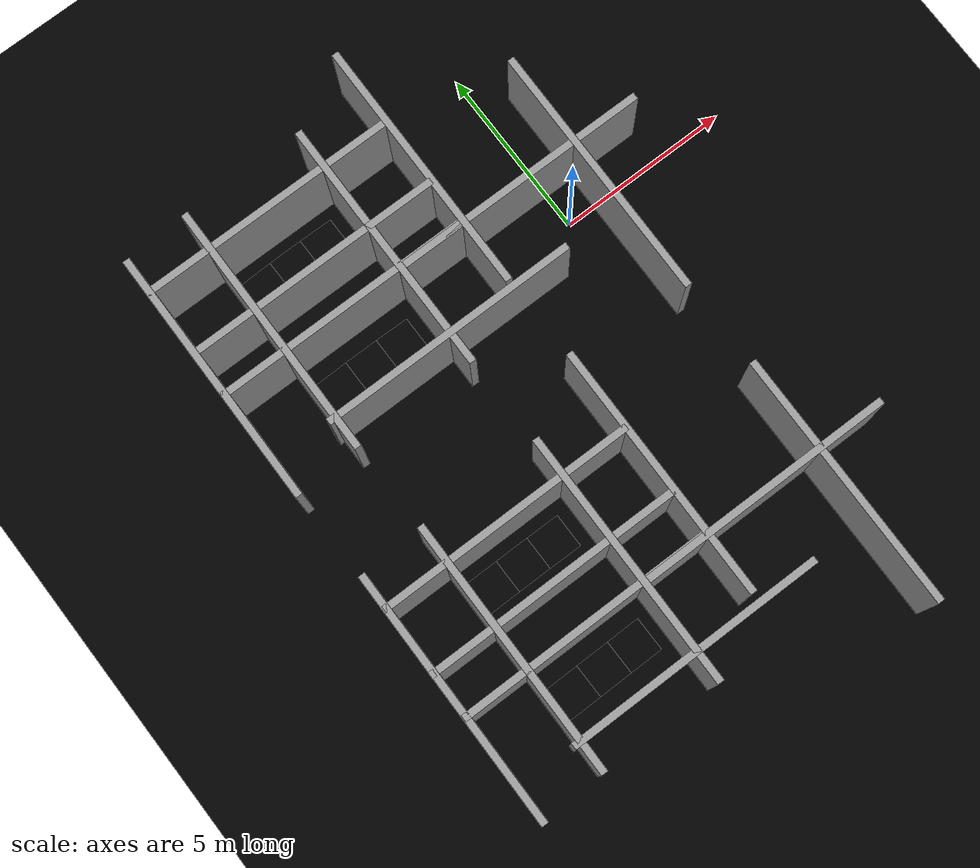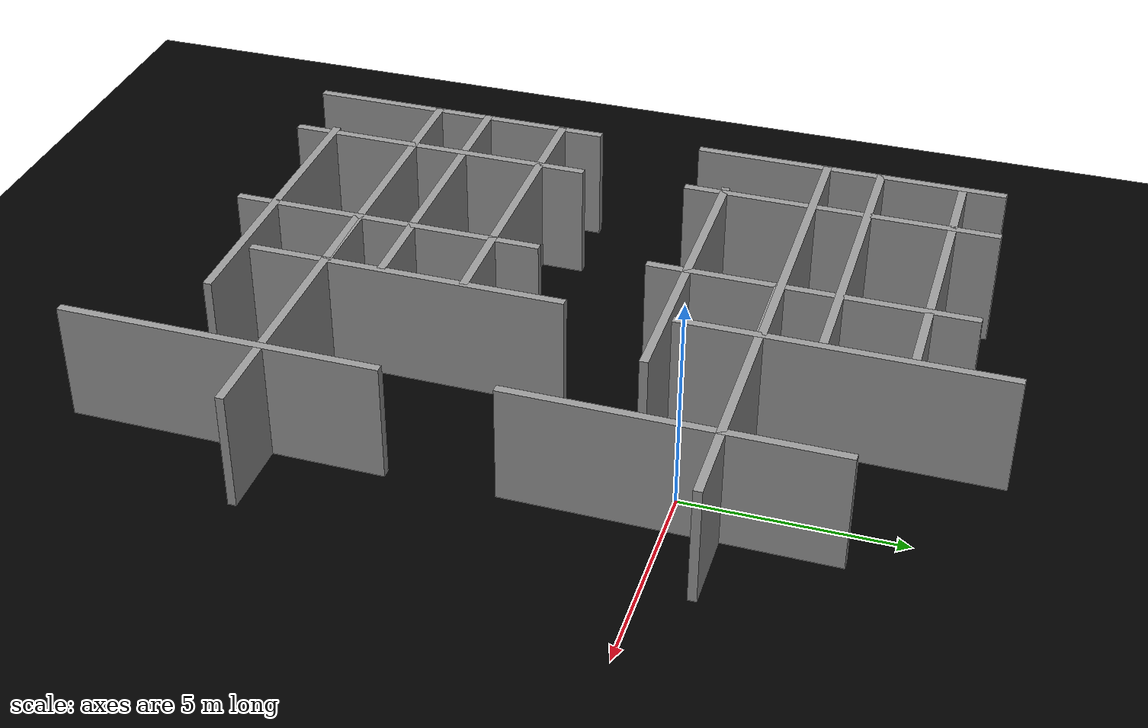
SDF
<sdf version="1.7">
 <world name="default">
  <light name="sun" type="directional">
   <pose>0 0 10 0 -0 0</pose>
   <diffuse>0.8 0.8 0.8 1</diffuse>
   <specular>0.2 0.2 0.2 1</specular>
   <attenuation>
    <range>1000</range>
    <constant>0.9</constant>
    <linear>0.01</linear>
    <quadratic>0.001</quadratic>
   </attenuation>
   <direction>-0.5 0.1 -0.9</direction>
   <spot><inner_angle>0</inner_angle><outer_angle>0</outer_angle><falloff>0</falloff></spot>
  </light>
  <model name="c_ground_plane">
   <static>1</static>
   <link name="link">
    <collision name="collision">
     <geometry><plane><normal>0 0 1</normal><size>100 100</size></plane></geometry>
     <surface>
      <contact><collide_bitmask>65535</collide_bitmask></contact>
      <friction><ode><mu>100</mu><mu2>50</mu2></ode></friction>
     </surface>
    </collision>
    <visual name="visual">
     <cast_shadows>0</cast_shadows>
     <geometry><plane><normal>0 0 1</normal><size>100 100</size></plane></geometry>
     <material>
      <ambient>0 0 0 1</ambient>
      <diffuse>0 0 0 1</diffuse>
      <specular>0 0 0 1</specular>
      <emissive>0 0 0 1</emissive>
     </material>
    </visual>
   </link>
  </model>
  <model name="c_dry_ramp">
   <pose>-6.5023 -9.94 0 0 -0 0.006807</pose>
   <static>1</static>
   <link name="flat_plane">
    <inertial>
     <mass>1000</mass>
     <inertia><ixx>10</ixx><ixy>0</ixy><ixz>0</ixz><iyy>10</iyy><iyz>0</iyz><izz>10</izz></inertia>
    </inertial>
    <pose>0 0 0.069756 0 -0 0</pose>
    <collision name="collision">
     <geometry><box><size>1 1 0.001</size></box></geometry>
     <material><script><name>IceMaterial</name></script></material>
    </collision>
    <visual name="visual">
     <cast_shadows>0</cast_shadows>
     <geometry><box><size>1 1 0.001</size></box></geometry>
     <material>
      <ambient>0 0 0 1</ambient>
      <diffuse>0 0 0 1</diffuse>
      <specular>0 0 0 1</specular>
      <emissive>0 0 0 1</emissive>
     </material>
    </visual>
   </link>
   <link name="upward_slope">
    <inertial>
     <mass>1000</mass>
     <inertia><ixx>10</ixx><ixy>0</ixy><ixz>0</ixz><iyy>10</iyy><iyz>0</iyz><izz>10</izz></inertia>
    </inertial>
    <pose>-0.998409 0 0.034878 0 -0.069813 0</pose>
    <collision name="collision">
     <geometry><box><size>1 1 0.001</size></box></geometry>
     <material><script><name>IceMaterial</name></script></material>
    </collision>
    <visual name="visual">
     <cast_shadows>0</cast_shadows>
     <geometry><box><size>1 1 0.001</size></box></geometry>
     <material>
      <ambient>0 0 0 1</ambient>
      <diffuse>0 0 0 1</diffuse>
      <specular>0 0 0 1</specular>
      <emissive>0 0 0 1</emissive>
     </material>
    </visual>
   </link>
   <link name="downward_slope">
    <inertial>
     <mass>1000</mass>
     <inertia><ixx>10</ixx><ixy>0</ixy><ixz>0</ixz><iyy>10</iyy><iyz>0</iyz><izz>10</izz></inertia>
    </inertial>
    <pose>0.998409 0 0.034878 0 0.069813 0</pose>
    <collision name="collision">
     <geometry><box><size>1 1 0.001</size></box></geometry>
     <material><script><name>IceMaterial</name></script></material>
    </collision>
    <visual name="visual">
     <cast_shadows>0</cast_shadows>
     <geometry><box><size>1 1 0.001</size></box></geometry>
     <material>
      <ambient>0 0 0 1</ambient>
      <diffuse>0 0 0 1</diffuse>
      <specular>0 0 0 1</specular>
      <emissive>0 0 0 1</emissive>
     </material>
    </visual>
   </link>
  </model>
  <model name="c_icy_ramp">
   <pose>-6.50655 0.059735 0 0 -0 0</pose>
   <static>1</static>
   <link name="flat_plane">
    <inertial>
     <mass>1000</mass>
     <inertia><ixx>10</ixx><ixy>0</ixy><ixz>0</ixz><iyy>10</iyy><iyz>0</iyz><izz>10</izz></inertia>
    </inertial>
    <pose>0 0 0.069756 0 -0 0</pose>
    <collision name="collision">
     <geometry><box><size>1 1 0.001</size></box></geometry>
     <surface>
      <friction>
       <ode><mu>0.05</mu><mu2>0.05</mu2><fdir1>0 0 0</fdir1><slip1>0</slip1><slip2>0</slip2></ode>
      </friction>
     </surface>
     <material><script><name>IceMaterial</name></script></material>
    </collision>
    <visual name="visual">
     <cast_shadows>0</cast_shadows>
     <geometry><box><size>1 1 0.001</size></box></geometry>
     <material>
      <ambient>0 0 0 1</ambient>
      <diffuse>0 0 0 1</diffuse>
      <specular>0 0 0 1</specular>
      <emissive>0 0 0 1</emissive>
     </material>
    </visual>
   </link>
   <link name="upward_slope">
    <inertial>
     <mass>1000</mass>
     <inertia><ixx>10</ixx><ixy>0</ixy><ixz>0</ixz><iyy>10</iyy><iyz>0</iyz><izz>10</izz></inertia>
    </inertial>
    <pose>-0.998409 0 0.034878 0 -0.069813 0</pose>
    <collision name="collision">
     <geometry><box><size>1 1 0.001</size></box></geometry>
     <surface>
      <friction>
       <ode><mu>0.05</mu><mu2>0.05</mu2><fdir1>0 0 0</fdir1><slip1>0</slip1><slip2>0</slip2></ode>
      </friction>
     </surface>
     <material><script><name>IceMaterial</name></script></material>
    </collision>
    <visual name="visual">
     <cast_shadows>0</cast_shadows>
     <geometry><box><size>1 1 0.001</size></box></geometry>
     <material>
      <ambient>0 0 0 1</ambient>
      <diffuse>0 0 0 1</diffuse>
      <specular>0 0 0 1</specular>
      <emissive>0 0 0 1</emissive>
     </material>
    </visual>
   </link>
   <link name="downward_slope">
    <inertial>
     <mass>1000</mass>
     <inertia><ixx>10</ixx><ixy>0</ixy><ixz>0</ixz><iyy>10</iyy><iyz>0</iyz><izz>10</izz></inertia>
    </inertial>
    <pose>0.998409 0 0.034878 0 0.069813 0</pose>
    <collision name="collision">
     <geometry><box><size>1 1 0.001</size></box></geometry>
     <surface>
      <friction>
       <ode><mu>0.05</mu><mu2>0.05</mu2><fdir1>0 0 0</fdir1><slip1>0</slip1><slip2>0</slip2></ode>
      </friction>
     </surface>
     <material><script><name>IceMaterial</name></script></material>
    </collision>
    <visual name="visual">
     <cast_shadows>0</cast_shadows>
     <geometry><box><size>1 1 0.001</size></box></geometry>
     <material>
      <ambient>0 0 0 1</ambient>
      <diffuse>0 0 0 1</diffuse>
      <specular>0 0 0 1</specular>
      <emissive>0 0 0 1</emissive>
     </material>
    </visual>
   </link>
  </model>
  <gravity>0 0 -9.8</gravity>
  <magnetic_field>6e-06 2.3e-05 -4.2e-05</magnetic_field>
  <atmosphere type="adiabatic"/>
  <physics type="ode">
   <max_step_size>0.001</max_step_size>
   <real_time_factor>7</real_time_factor>
   <real_time_update_rate>7000</real_time_update_rate>
  </physics>
  <scene><ambient>0.4 0.4 0.4 1</ambient><background>0.7 0.7 0.7 1</background><shadows>1</shadows></scene>
  <spherical_coordinates>
   <surface_model>EARTH_WGS84</surface_model>
   <latitude_deg>0</latitude_deg>
   <longitude_deg>0</longitude_deg>
   <elevation>0</elevation>
   <heading_deg>0</heading_deg>
  </spherical_coordinates>
  <model name="c_grey_wall">
   <static>1</static>
   <link name="link">
    <pose>0 0 1.4 0 -0 0</pose>
    <collision name="collision"><geometry><box><size>7.5 0.2 2.8</size></box></geometry></collision>
    <visual name="visual">
     <cast_shadows>0</cast_shadows>
     <geometry><box><size>7.5 0.2 2.8</size></box></geometry>
     <material>
      <script>
       <uri>model://grey_wall/materials/scripts</uri>
       <uri>model://grey_wall/materials/textures</uri>
       <name>vrc/grey_wall</name>
      </script>
     </material>
    </visual>
   </link>
   <pose>-4.65172 -11.0223 0 0 -0 0</pose>
  </model>
  <model name="c_grey_wall_clone">
   <static>1</static>
   <link name="link">
    <pose>0 0 1.4 0 -0 0</pose>
    <collision name="collision"><geometry><box><size>7.5 0.2 2.8</size></box></geometry></collision>
    <visual name="visual">
     <cast_shadows>0</cast_shadows>
     <geometry><box><size>7.5 0.2 2.8</size></box></geometry>
     <material>
      <script>
       <uri>model://grey_wall/materials/scripts</uri>
       <uri>model://grey_wall/materials/textures</uri>
       <name>vrc/grey_wall</name>
      </script>
     </material>
    </visual>
   </link>
   <pose>-0.851655 -8.92685 0 0 -0 0</pose>
  </model>
  <model name="c_grey_wall_clone_0">
   <static>1</static>
   <link name="link">
    <pose>0 0 1.4 0 -0 0</pose>
    <collision name="collision"><geometry><box><size>7.5 0.2 2.8</size></box></geometry></collision>
    <visual name="visual">
     <cast_shadows>0</cast_shadows>
     <geometry><box><size>7.5 0.2 2.8</size></box></geometry>
     <material>
      <script>
       <uri>model://grey_wall/materials/scripts</uri>
       <uri>model://grey_wall/materials/textures</uri>
       <name>vrc/grey_wall</name>
      </script>
     </material>
    </visual>
   </link>
   <pose>-4.58573 -8.21966 -0 0 0 -1.57877</pose>
  </model>
  <model name="c_grey_wall_clone_0_clone">
   <static>1</static>
   <link name="link">
    <pose>0 0 1.4 0 -0 0</pose>
    <collision name="collision"><geometry><box><size>7.5 0.2 2.8</size></box></geometry></collision>
    <visual name="visual">
     <cast_shadows>0</cast_shadows>
     <geometry><box><size>7.5 0.2 2.8</size></box></geometry>
     <material>
      <script>
       <uri>model://grey_wall/materials/scripts</uri>
       <uri>model://grey_wall/materials/textures</uri>
       <name>vrc/grey_wall</name>
      </script>
     </material>
    </visual>
   </link>
   <pose>-8.16036 -8.23164 -0 0 0 -1.57877</pose>
  </model>
  <model name="c_grey_wall_clone_0_clone_0">
   <static>1</static>
   <link name="link">
    <pose>0 0 1.4 0 -0 0</pose>
    <collision name="collision"><geometry><box><size>7.5 0.2 2.8</size></box></geometry></collision>
    <visual name="visual">
     <cast_shadows>0</cast_shadows>
     <geometry><box><size>7.5 0.2 2.8</size></box></geometry>
     <material>
      <script>
       <uri>model://grey_wall/materials/scripts</uri>
       <uri>model://grey_wall/materials/textures</uri>
       <name>vrc/grey_wall</name>
      </script>
     </material>
    </visual>
   </link>
   <pose>-2.59482 -7 -0 0 0 -1.57877</pose>
  </model>
  <model name="c_grey_wall_clone_1_clone">
   <static>1</static>
   <link name="link">
    <pose>0 0 1.4 0 -0 0</pose>
    <collision name="collision"><geometry><box><size>7.5 0.2 2.8</size></box></geometry></collision>
    <visual name="visual">
     <cast_shadows>0</cast_shadows>
     <geometry><box><size>7.5 0.2 2.8</size></box></geometry>
     <material>
      <script>
       <uri>model://grey_wall/materials/scripts</uri>
       <uri>model://grey_wall/materials/textures</uri>
       <name>vrc/grey_wall</name>
      </script>
     </material>
    </visual>
   </link>
   <pose>-6.36556 -8.88471 0 0 -0 0</pose>
  </model>
  <model name="c_grey_wall_clone_1_clone_0">
   <static>1</static>
   <link name="link">
    <pose>0 0 1.4 0 -0 0</pose>
    <collision name="collision"><geometry><box><size>7.5 0.2 2.8</size></box></geometry></collision>
    <visual name="visual">
     <cast_shadows>0</cast_shadows>
     <geometry><box><size>7.5 0.2 2.8</size></box></geometry>
     <material>
      <script>
       <uri>model://grey_wall/materials/scripts</uri>
       <uri>model://grey_wall/materials/textures</uri>
       <name>vrc/grey_wall</name>
      </script>
     </material>
    </visual>
   </link>
   <pose>-6.38342 -7.5729 0 0 -0 0</pose>
  </model>
  <model name="c_grey_wall_clone_1_clone_0_clone_0">
   <static>1</static>
   <link name="link">
    <pose>0 0 1.4 0 -0 0</pose>
    <collision name="collision"><geometry><box><size>7.5 0.2 2.8</size></box></geometry></collision>
    <visual name="visual">
     <cast_shadows>0</cast_shadows>
     <geometry><box><size>7.5 0.2 2.8</size></box></geometry>
     <material>
      <script>
       <uri>model://grey_wall/materials/scripts</uri>
       <uri>model://grey_wall/materials/textures</uri>
       <name>vrc/grey_wall</name>
      </script>
     </material>
    </visual>
   </link>
   <pose>-6.32531 -5.605 0 0 -0 0</pose>
  </model>
  <model name="c_grey_wall_clone_0_clone_clone">
   <static>1</static>
   <link name="link">
    <pose>0 0 1.4 0 -0 0</pose>
    <collision name="collision"><geometry><box><size>7.5 0.2 2.8</size></box></geometry></collision>
    <visual name="visual">
     <cast_shadows>0</cast_shadows>
     <geometry><box><size>7.5 0.2 2.8</size></box></geometry>
     <material>
      <script>
       <uri>model://grey_wall/materials/scripts</uri>
       <uri>model://grey_wall/materials/textures</uri>
       <name>vrc/grey_wall</name>
      </script>
     </material>
    </visual>
   </link>
   <pose>-10.0357 -8.32626 -0 0 0 -1.57877</pose>
  </model>
  <model name="c_grey_wall_clone_0_clone_1">
   <static>1</static>
   <link name="link">
    <pose>0 0 1.4 0 -0 0</pose>
    <collision name="collision"><geometry><box><size>7.5 0.2 2.8</size></box></geometry></collision>
    <visual name="visual">
     <cast_shadows>0</cast_shadows>
     <geometry><box><size>7.5 0.2 2.8</size></box></geometry>
     <material>
      <script>
       <uri>model://grey_wall/materials/scripts</uri>
       <uri>model://grey_wall/materials/textures</uri>
       <name>vrc/grey_wall</name>
      </script>
     </material>
    </visual>
   </link>
   <pose>0.915728 -9.94712 -0 0 0 -1.57877</pose>
  </model>
  <model name="dry_ramp">
   <pose>-6.5023 3.47426 0 0 -0 0.006807</pose>
   <static>1</static>
   <link name="flat_plane">
    <inertial>
     <mass>1000</mass>
     <inertia><ixx>10</ixx><ixy>0</ixy><ixz>0</ixz><iyy>10</iyy><iyz>0</iyz><izz>10</izz></inertia>
    </inertial>
    <pose>0 0 0.069756 0 -0 0</pose>
    <collision name="collision">
     <geometry><box><size>1 1 0.001</size></box></geometry>
     <material><script><name>IceMaterial</name></script></material>
    </collision>
    <visual name="visual">
     <cast_shadows>0</cast_shadows>
     <geometry><box><size>1 1 0.001</size></box></geometry>
     <material>
      <ambient>0 0 0 1</ambient>
      <diffuse>0 0 0 1</diffuse>
      <specular>0 0 0 1</specular>
      <emissive>0 0 0 1</emissive>
     </material>
    </visual>
   </link>
   <link name="upward_slope">
    <inertial>
     <mass>1000</mass>
     <inertia><ixx>10</ixx><ixy>0</ixy><ixz>0</ixz><iyy>10</iyy><iyz>0</iyz><izz>10</izz></inertia>
    </inertial>
    <pose>-0.998409 0 0.034878 0 -0.069813 0</pose>
    <collision name="collision">
     <geometry><box><size>1 1 0.001</size></box></geometry>
     <material><script><name>IceMaterial</name></script></material>
    </collision>
    <visual name="visual">
     <cast_shadows>0</cast_shadows>
     <geometry><box><size>1 1 0.001</size></box></geometry>
     <material>
      <ambient>0 0 0 1</ambient>
      <diffuse>0 0 0 1</diffuse>
      <specular>0 0 0 1</specular>
      <emissive>0 0 0 1</emissive>
     </material>
    </visual>
   </link>
   <link name="downward_slope">
    <inertial>
     <mass>1000</mass>
     <inertia><ixx>10</ixx><ixy>0</ixy><ixz>0</ixz><iyy>10</iyy><iyz>0</iyz><izz>10</izz></inertia>
    </inertial>
    <pose>0.998409 0 0.034878 0 0.069813 0</pose>
    <collision name="collision">
     <geometry><box><size>1 1 0.001</size></box></geometry>
     <material><script><name>IceMaterial</name></script></material>
    </collision>
    <visual name="visual">
     <cast_shadows>0</cast_shadows>
     <geometry><box><size>1 1 0.001</size></box></geometry>
     <material>
      <ambient>0 0 0 1</ambient>
      <diffuse>0 0 0 1</diffuse>
      <specular>0 0 0 1</specular>
      <emissive>0 0 0 1</emissive>
     </material>
    </visual>
   </link>
  </model>
  <model name="icy_ramp">
   <pose>-6.52276 -6.54195 0 0 -0 0</pose>
   <static>1</static>
   <link name="flat_plane">
    <inertial>
     <mass>1000</mass>
     <inertia><ixx>10</ixx><ixy>0</ixy><ixz>0</ixz><iyy>10</iyy><iyz>0</iyz><izz>10</izz></inertia>
    </inertial>
    <pose>0 0 0.069756 0 -0 0</pose>
    <collision name="collision">
     <geometry><box><size>1 1 0.001</size></box></geometry>
     <surface>
      <friction>
       <ode><mu>0.05</mu><mu2>0.05</mu2><fdir1>0 0 0</fdir1><slip1>0</slip1><slip2>0</slip2></ode>
      </friction>
     </surface>
     <material><script><name>IceMaterial</name></script></material>
    </collision>
    <visual name="visual">
     <cast_shadows>0</cast_shadows>
     <geometry><box><size>1 1 0.001</size></box></geometry>
     <material>
      <ambient>0 0 0 1</ambient>
      <diffuse>0 0 0 1</diffuse>
      <specular>0 0 0 1</specular>
      <emissive>0 0 0 1</emissive>
     </material>
    </visual>
   </link>
   <link name="upward_slope">
    <inertial>
     <mass>1000</mass>
     <inertia><ixx>10</ixx><ixy>0</ixy><ixz>0</ixz><iyy>10</iyy><iyz>0</iyz><izz>10</izz></inertia>
    </inertial>
    <pose>-0.998409 0 0.034878 0 -0.069813 0</pose>
    <collision name="collision">
     <geometry><box><size>1 1 0.001</size></box></geometry>
     <surface>
      <friction>
       <ode><mu>0.05</mu><mu2>0.05</mu2><fdir1>0 0 0</fdir1><slip1>0</slip1><slip2>0</slip2></ode>
      </friction>
     </surface>
     <material><script><name>IceMaterial</name></script></material>
    </collision>
    <visual name="visual">
     <cast_shadows>0</cast_shadows>
     <geometry><box><size>1 1 0.001</size></box></geometry>
     <material>
      <ambient>0 0 0 1</ambient>
      <diffuse>0 0 0 1</diffuse>
      <specular>0 0 0 1</specular>
      <emissive>0 0 0 1</emissive>
     </material>
    </visual>
   </link>
   <link name="downward_slope">
    <inertial>
     <mass>1000</mass>
     <inertia><ixx>10</ixx><ixy>0</ixy><ixz>0</ixz><iyy>10</iyy><iyz>0</iyz><izz>10</izz></inertia>
    </inertial>
    <pose>0.998409 0 0.034878 0 0.069813 0</pose>
    <collision name="collision">
     <geometry><box><size>1 1 0.001</size></box></geometry>
     <surface>
      <friction>
       <ode><mu>0.05</mu><mu2>0.05</mu2><fdir1>0 0 0</fdir1><slip1>0</slip1><slip2>0</slip2></ode>
      </friction>
     </surface>
     <material><script><name>IceMaterial</name></script></material>
    </collision>
    <visual name="visual">
     <cast_shadows>0</cast_shadows>
     <geometry><box><size>1 1 0.001</size></box></geometry>
     <material>
      <ambient>0 0 0 1</ambient>
      <diffuse>0 0 0 1</diffuse>
      <specular>0 0 0 1</specular>
      <emissive>0 0 0 1</emissive>
     </material>
    </visual>
   </link>
  </model>
  <model name="grey_wall">
   <static>1</static>
   <link name="link">
    <pose>0 0 1.4 0 -0 0</pose>
    <collision name="collision"><geometry><box><size>7.5 0.2 2.8</size></box></geometry></collision>
    <visual name="visual">
     <cast_shadows>0</cast_shadows>
     <geometry><box><size>7.5 0.2 2.8</size></box></geometry>
     <material>
      <script>
       <uri>model://grey_wall/materials/scripts</uri>
       <uri>model://grey_wall/materials/textures</uri>
       <name>vrc/grey_wall</name>
      </script>
     </material>
    </visual>
   </link>
   <pose>-4.65172 -1.0223 0 0 -0 0</pose>
  </model>
  <model name="grey_wall_clone">
   <static>1</static>
   <link name="link">
    <pose>0 0 1.4 0 -0 0</pose>
    <collision name="collision"><geometry><box><size>7.5 0.2 2.8</size></box></geometry></collision>
    <visual name="visual">
     <cast_shadows>0</cast_shadows>
     <geometry><box><size>7.5 0.2 2.8</size></box></geometry>
     <material>
      <script>
       <uri>model://grey_wall/materials/scripts</uri>
       <uri>model://grey_wall/materials/textures</uri>
       <name>vrc/grey_wall</name>
      </script>
     </material>
    </visual>
   </link>
   <pose>-0.851655 1.07315 0 0 -0 0</pose>
  </model>
  <model name="grey_wall_clone_0">
   <static>1</static>
   <link name="link">
    <pose>0 0 1.4 0 -0 0</pose>
    <collision name="collision"><geometry><box><size>7.5 0.2 2.8</size></box></geometry></collision>
    <visual name="visual">
     <cast_shadows>0</cast_shadows>
     <geometry><box><size>7.5 0.2 2.8</size></box></geometry>
     <material>
      <script>
       <uri>model://grey_wall/materials/scripts</uri>
       <uri>model://grey_wall/materials/textures</uri>
       <name>vrc/grey_wall</name>
      </script>
     </material>
    </visual>
   </link>
   <pose>-4.58573 1.78034 -0 0 0 -1.57877</pose>
  </model>
  <model name="grey_wall_clone_0_clone">
   <static>1</static>
   <link name="link">
    <pose>0 0 1.4 0 -0 0</pose>
    <collision name="collision"><geometry><box><size>7.5 0.2 2.8</size></box></geometry></collision>
    <visual name="visual">
     <cast_shadows>0</cast_shadows>
     <geometry><box><size>7.5 0.2 2.8</size></box></geometry>
     <material>
      <script>
       <uri>model://grey_wall/materials/scripts</uri>
       <uri>model://grey_wall/materials/textures</uri>
       <name>vrc/grey_wall</name>
      </script>
     </material>
    </visual>
   </link>
   <pose>-8.16036 1.76836 -0 0 0 -1.57877</pose>
  </model>
  <model name="grey_wall_clone_0_clone_0">
   <static>1</static>
   <link name="link">
    <pose>0 0 1.4 0 -0 0</pose>
    <collision name="collision"><geometry><box><size>7.5 0.2 2.8</size></box></geometry></collision>
    <visual name="visual">
     <cast_shadows>0</cast_shadows>
     <geometry><box><size>7.5 0.2 2.8</size></box></geometry>
     <material>
      <script>
       <uri>model://grey_wall/materials/scripts</uri>
       <uri>model://grey_wall/materials/textures</uri>
       <name>vrc/grey_wall</name>
      </script>
     </material>
    </visual>
   </link>
   <pose>-2.59482 2.90964 -0 0 0 -1.57877</pose>
  </model>
  <model name="grey_wall_clone_1_clone">
   <static>1</static>
   <link name="link">
    <pose>0 0 1.4 0 -0 0</pose>
    <collision name="collision"><geometry><box><size>7.5 0.2 2.8</size></box></geometry></collision>
    <visual name="visual">
     <cast_shadows>0</cast_shadows>
     <geometry><box><size>7.5 0.2 2.8</size></box></geometry>
     <material>
      <script>
       <uri>model://grey_wall/materials/scripts</uri>
       <uri>model://grey_wall/materials/textures</uri>
       <name>vrc/grey_wall</name>
      </script>
     </material>
    </visual>
   </link>
   <pose>-6.36556 1.11529 0 0 -0 0</pose>
  </model>
  <model name="grey_wall_clone_1_clone_0">
   <static>1</static>
   <link name="link">
    <pose>0 0 1.4 0 -0 0</pose>
    <collision name="collision"><geometry><box><size>7.5 0.2 2.8</size></box></geometry></collision>
    <visual name="visual">
     <cast_shadows>0</cast_shadows>
     <geometry><box><size>7.5 0.2 2.8</size></box></geometry>
     <material>
      <script>
       <uri>model://grey_wall/materials/scripts</uri>
       <uri>model://grey_wall/materials/textures</uri>
       <name>vrc/grey_wall</name>
      </script>
     </material>
    </visual>
   </link>
   <pose>-6.38342 2.4271 0 0 -0 0</pose>
  </model>
  <model name="grey_wall_clone_1_clone_0_clone_0">
   <static>1</static>
   <link name="link">
    <pose>0 0 1.4 0 -0 0</pose>
    <collision name="collision"><geometry><box><size>7.5 0.2 2.8</size></box></geometry></collision>
    <visual name="visual">
     <cast_shadows>0</cast_shadows>
     <geometry><box><size>7.5 0.2 2.8</size></box></geometry>
     <material>
      <script>
       <uri>model://grey_wall/materials/scripts</uri>
       <uri>model://grey_wall/materials/textures</uri>
       <name>vrc/grey_wall</name>
      </script>
     </material>
    </visual>
   </link>
   <pose>-6.32531 4.395 0 0 -0 0</pose>
  </model>
  <model name="grey_wall_clone_0_clone_clone">
   <static>1</static>
   <link name="link">
    <pose>0 0 1.4 0 -0 0</pose>
    <collision name="collision"><geometry><box><size>7.5 0.2 2.8</size></box></geometry></collision>
    <visual name="visual">
     <cast_shadows>0</cast_shadows>
     <geometry><box><size>7.5 0.2 2.8</size></box></geometry>
     <material>
      <script>
       <uri>model://grey_wall/materials/scripts</uri>
       <uri>model://grey_wall/materials/textures</uri>
       <name>vrc/grey_wall</name>
      </script>
     </material>
    </visual>
   </link>
   <pose>-10.0357 1.67374 -0 0 0 -1.57877</pose>
  </model>
  <model name="grey_wall_clone_0_clone_1">
   <static>1</static>
   <link name="link">
    <pose>0 0 1.4 0 -0 0</pose>
    <collision name="collision"><geometry><box><size>7.5 0.2 2.8</size></box></geometry></collision>
    <visual name="visual">
     <cast_shadows>0</cast_shadows>
     <geometry><box><size>7.5 0.2 2.8</size></box></geometry>
     <material>
      <script>
       <uri>model://grey_wall/materials/scripts</uri>
       <uri>model://grey_wall/materials/textures</uri>
       <name>vrc/grey_wall</name>
      </script>
     </material>
    </visual>
   </link>
   <pose>0.915728 0.052876 -0 0 0 -1.57877</pose>
  </model>
 </world>
</sdf>
